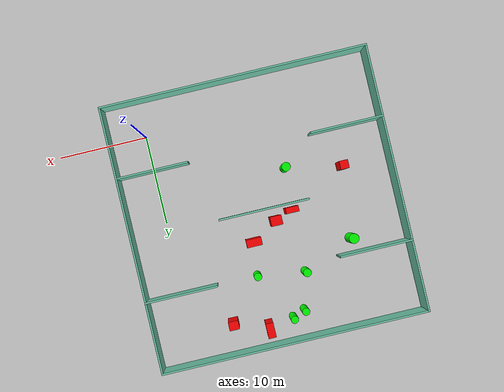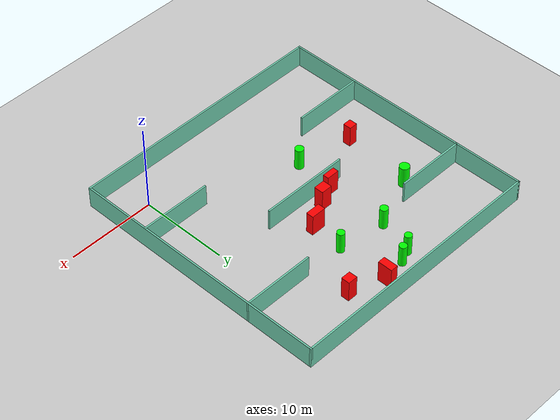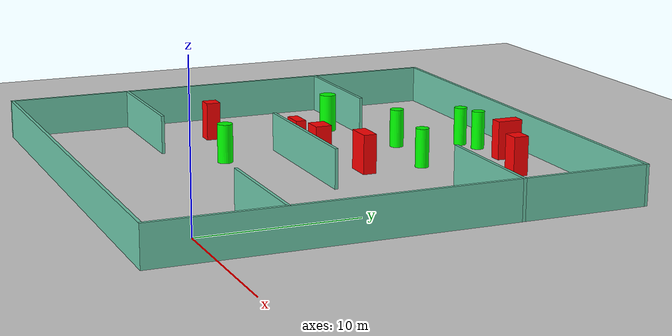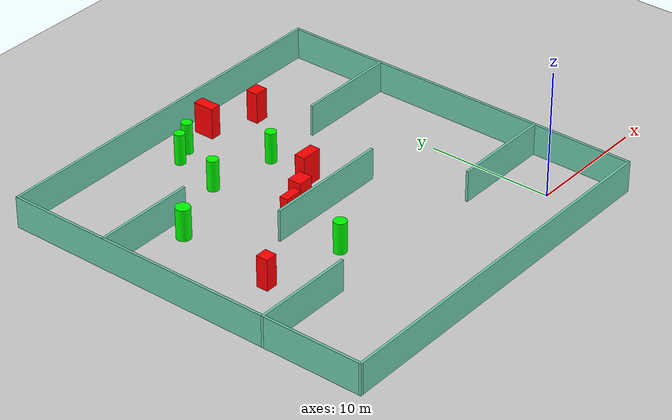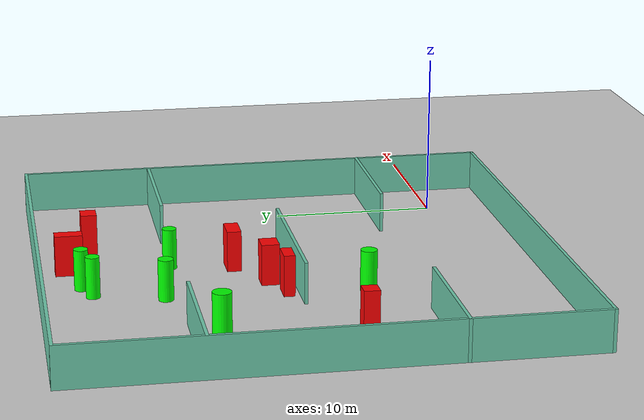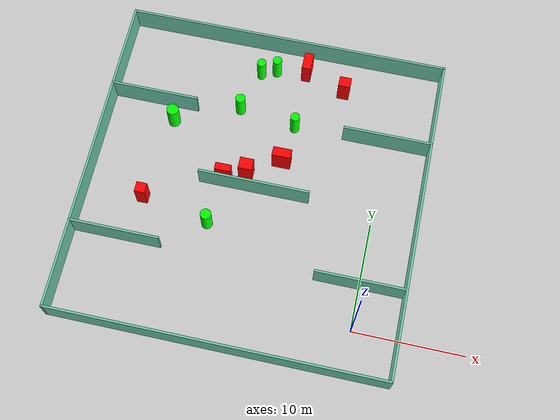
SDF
<sdf version="1.7">
 <world name="default">
  <light name="sun" type="directional">
   <pose>0 0 10 0 -0 0</pose>
   <diffuse>0.8 0.8 0.8 1</diffuse>
   <specular>0.2 0.2 0.2 1</specular>
   <attenuation>
    <range>1000</range>
    <constant>0.9</constant>
    <linear>0.01</linear>
    <quadratic>0.001</quadratic>
   </attenuation>
   <direction>-0.5 0.1 -0.9</direction>
   <spot><inner_angle>0</inner_angle><outer_angle>0</outer_angle><falloff>0</falloff></spot>
  </light>
  <model name="ground_plane">
   <static>1</static>
   <link name="link">
    <collision name="collision">
     <geometry><plane><normal>0 0 1</normal><size>100 100</size></plane></geometry>
     <surface>
      <contact><collide_bitmask>65535</collide_bitmask></contact>
      <friction><ode><mu>100</mu><mu2>50</mu2></ode></friction>
     </surface>
    </collision>
    <visual name="visual">
     <cast_shadows>0</cast_shadows>
     <geometry><plane><normal>0 0 1</normal><size>100 100</size></plane></geometry>
     <material>
      <script><uri>file://media/materials/scripts/gazebo.material</uri><name>Gazebo/Grey</name></script>
     </material>
    </visual>
   </link>
  </model>
  <gravity>0 0 -9.8</gravity>
  <magnetic_field>6e-06 2.3e-05 -4.2e-05</magnetic_field>
  <atmosphere type="adiabatic"/>
  <physics type="ode">
   <max_step_size>0.001</max_step_size>
   <real_time_factor>1</real_time_factor>
   <real_time_update_rate>1000</real_time_update_rate>
  </physics>
  <scene><ambient>0.4 0.4 0.4 1</ambient><background>0.7 0.7 0.7 1</background><shadows>1</shadows></scene>
  <spherical_coordinates>
   <surface_model>EARTH_WGS84</surface_model>
   <latitude_deg>0</latitude_deg>
   <longitude_deg>0</longitude_deg>
   <elevation>0</elevation>
   <heading_deg>0</heading_deg>
  </spherical_coordinates>
  <model name="my_base_walls">
   <link name="Wall_10">
    <collision name="Wall_10_Collision">
     <geometry><box><size>8.2 0.2 2.5</size></box></geometry>
     <pose>0 0 1.25 0 -0 0</pose>
    </collision>
    <visual name="Wall_10_Visual">
     <pose>0 0 1.25 0 -0 0</pose>
     <geometry><box><size>8.2 0.2 2.5</size></box></geometry>
     <material>
      <script><uri>file://media/materials/scripts/gazebo.material</uri><name>Gazebo/Grey</name></script>
      <ambient>0.435294 0.796078 0.67451 1</ambient>
     </material>
     <meta><layer>0</layer></meta>
    </visual>
    <pose>-11 -7 0 0 -0 0</pose>
   </link>
   <link name="Wall_12">
    <collision name="Wall_12_Collision">
     <geometry><box><size>8.2 0.2 2.5</size></box></geometry>
     <pose>0 0 1.25 0 -0 0</pose>
    </collision>
    <visual name="Wall_12_Visual">
     <pose>0 0 1.25 0 -0 0</pose>
     <geometry><box><size>8.2 0.2 2.5</size></box></geometry>
     <material>
      <script><uri>file://media/materials/scripts/gazebo.material</uri><name>Gazebo/Grey</name></script>
      <ambient>0.435294 0.796078 0.67451 1</ambient>
     </material>
     <meta><layer>0</layer></meta>
    </visual>
    <pose>-11 7 0 0 -0 0</pose>
   </link>
   <link name="Wall_14">
    <collision name="Wall_14_Collision">
     <geometry><box><size>8.2 0.2 2.5</size></box></geometry>
     <pose>0 0 1.25 0 -0 0</pose>
    </collision>
    <visual name="Wall_14_Visual">
     <pose>0 0 1.25 0 -0 0</pose>
     <geometry><box><size>8.2 0.2 2.5</size></box></geometry>
     <material>
      <script><uri>file://media/materials/scripts/gazebo.material</uri><name>Gazebo/Grey</name></script>
      <ambient>0.435294 0.796078 0.67451 1</ambient>
     </material>
     <meta><layer>0</layer></meta>
    </visual>
    <pose>11 7 0 0 -0 3.14159</pose>
   </link>
   <link name="Wall_16">
    <collision name="Wall_16_Collision">
     <geometry><box><size>10.2 0.2 2.5</size></box></geometry>
     <pose>0 0 1.25 0 -0 0</pose>
    </collision>
    <visual name="Wall_16_Visual">
     <pose>0 0 1.25 0 -0 0</pose>
     <geometry><box><size>10.2 0.2 2.5</size></box></geometry>
     <material>
      <script><uri>file://media/materials/scripts/gazebo.material</uri><name>Gazebo/Grey</name></script>
      <ambient>0.435294 0.796078 0.67451 1</ambient>
     </material>
     <meta><layer>0</layer></meta>
    </visual>
    <pose>0 0 0 0 -0 3.14159</pose>
   </link>
   <link name="Wall_2">
    <collision name="Wall_2_Collision">
     <geometry><box><size>30.2 0.2 2.5</size></box></geometry>
     <pose>0 0 1.25 0 -0 0</pose>
    </collision>
    <visual name="Wall_2_Visual">
     <pose>0 0 1.25 0 -0 0</pose>
     <geometry><box><size>30.2 0.2 2.5</size></box></geometry>
     <material>
      <script><uri>file://media/materials/scripts/gazebo.material</uri><name>Gazebo/Grey</name></script>
      <ambient>0.435294 0.796078 0.67451 1</ambient>
     </material>
     <meta><layer>0</layer></meta>
    </visual>
    <pose>0 -15 0 0 -0 3.14159</pose>
   </link>
   <link name="Wall_3">
    <collision name="Wall_3_Collision">
     <geometry><box><size>30.2 0.2 2.5</size></box></geometry>
     <pose>0 0 1.25 0 -0 0</pose>
    </collision>
    <visual name="Wall_3_Visual">
     <pose>0 0 1.25 0 -0 0</pose>
     <geometry><box><size>30.2 0.2 2.5</size></box></geometry>
     <material>
      <script><uri>file://media/materials/scripts/gazebo.material</uri><name>Gazebo/Grey</name></script>
      <ambient>0.435294 0.796078 0.67451 1</ambient>
     </material>
     <meta><layer>0</layer></meta>
    </visual>
    <pose>-15 0 0 0 -0 1.5708</pose>
   </link>
   <link name="Wall_4">
    <collision name="Wall_4_Collision">
     <geometry><box><size>30.2 0.2 2.5</size></box></geometry>
     <pose>0 0 1.25 0 -0 0</pose>
    </collision>
    <visual name="Wall_4_Visual">
     <pose>0 0 1.25 0 -0 0</pose>
     <geometry><box><size>30.2 0.2 2.5</size></box></geometry>
     <material>
      <script><uri>file://media/materials/scripts/gazebo.material</uri><name>Gazebo/Grey</name></script>
      <ambient>0.435294 0.796078 0.67451 1</ambient>
     </material>
     <meta><layer>0</layer></meta>
    </visual>
    <pose>0 15 0 0 -0 0</pose>
   </link>
   <link name="Wall_6">
    <collision name="Wall_6_Collision">
     <geometry><box><size>30.2 0.2 2.5</size></box></geometry>
     <pose>0 0 1.25 0 -0 0</pose>
    </collision>
    <visual name="Wall_6_Visual">
     <pose>0 0 1.25 0 -0 0</pose>
     <geometry><box><size>30.2 0.2 2.5</size></box></geometry>
     <material>
      <script><uri>file://media/materials/scripts/gazebo.material</uri><name>Gazebo/Grey</name></script>
      <ambient>0.435294 0.796078 0.67451 1</ambient>
     </material>
     <meta><layer>0</layer></meta>
    </visual>
    <pose>15 0 0 0 -0 1.5708</pose>
   </link>
   <link name="Wall_8">
    <collision name="Wall_8_Collision">
     <geometry><box><size>8.2 0.2 2.5</size></box></geometry>
     <pose>0 0 1.25 0 -0 0</pose>
    </collision>
    <visual name="Wall_8_Visual">
     <pose>0 0 1.25 0 -0 0</pose>
     <geometry><box><size>8.2 0.2 2.5</size></box></geometry>
     <material>
      <script><uri>file://media/materials/scripts/gazebo.material</uri><name>Gazebo/Grey</name></script>
      <ambient>0.435294 0.796078 0.67451 1</ambient>
     </material>
     <meta><layer>0</layer></meta>
    </visual>
    <pose>11 -7 0 0 -0 3.14159</pose>
   </link>
   <static>1</static>
   <pose>-11 11 0 0 -0 0</pose>
  </model>
  <model name="cylinder1">
   <static>1</static>
   <link name="link">
    <inertial>
     <mass>1</mass>
     <inertia><ixx>0.5</ixx><ixy>0</ixy><ixz>0</ixz><iyy>0.5</iyy><iyz>0</iyz><izz>1</izz></inertia>
    </inertial>
    <collision name="collision">
     <geometry><cylinder><radius>0.5595891323465612</radius><length>2.5</length></cylinder></geometry>
    </collision>
    <visual name="visual">
     <geometry><cylinder><radius>0.5595891323465612</radius><length>2.5</length></cylinder></geometry>
     <material>
      <ambient>0 1 0 1</ambient>
      <diffuse>0 1 0 1</diffuse>
      <specular>0.1 0.1 0.1 1</specular>
      <emissive>0 0 0 0</emissive>
     </material>
    </visual>
   </link>
   <pose>-19.843727237448633 16.376484649517717 1.25 0 0 0</pose>
  </model>
  <model name="cylinder2">
   <static>1</static>
   <link name="link">
    <inertial>
     <mass>1</mass>
     <inertia><ixx>0.5</ixx><ixy>0</ixy><ixz>0</ixz><iyy>0.5</iyy><iyz>0</iyz><izz>1</izz></inertia>
    </inertial>
    <collision name="collision">
     <geometry><cylinder><radius>0.4309791030595116</radius><length>2.5</length></cylinder></geometry>
    </collision>
    <visual name="visual">
     <geometry><cylinder><radius>0.4309791030595116</radius><length>2.5</length></cylinder></geometry>
     <material>
      <ambient>0 1 0 1</ambient>
      <diffuse>0 1 0 1</diffuse>
      <specular>0.1 0.1 0.1 1</specular>
      <emissive>0 0 0 0</emissive>
     </material>
    </visual>
   </link>
   <pose>-8.646039555624187 18.02951400548819 1.25 0 0 0</pose>
  </model>
  <model name="cylinder3">
   <static>1</static>
   <link name="link">
    <inertial>
     <mass>1</mass>
     <inertia><ixx>0.5</ixx><ixy>0</ixy><ixz>0</ixz><iyy>0.5</iyy><iyz>0</iyz><izz>1</izz></inertia>
    </inertial>
    <collision name="collision">
     <geometry><cylinder><radius>0.45417369976958905</radius><length>2.5</length></cylinder></geometry>
    </collision>
    <visual name="visual">
     <geometry><cylinder><radius>0.45417369976958905</radius><length>2.5</length></cylinder></geometry>
     <material>
      <ambient>0 1 0 1</ambient>
      <diffuse>0 1 0 1</diffuse>
      <specular>0.1 0.1 0.1 1</specular>
      <emissive>0 0 0 0</emissive>
     </material>
    </visual>
   </link>
   <pose>-14.00569529678399 18.833149169243097 1.25 0 0 0</pose>
  </model>
  <model name="cylinder4">
   <static>1</static>
   <link name="link">
    <inertial>
     <mass>1</mass>
     <inertia><ixx>0.5</ixx><ixy>0</ixy><ixz>0</ixz><iyy>0.5</iyy><iyz>0</iyz><izz>1</izz></inertia>
    </inertial>
    <collision name="collision">
     <geometry><cylinder><radius>0.4242971560941593</radius><length>2.5</length></cylinder></geometry>
    </collision>
    <visual name="visual">
     <geometry><cylinder><radius>0.4242971560941593</radius><length>2.5</length></cylinder></geometry>
     <material>
      <ambient>0 1 0 1</ambient>
      <diffuse>0 1 0 1</diffuse>
      <specular>0.1 0.1 0.1 1</specular>
      <emissive>0 0 0 0</emissive>
     </material>
    </visual>
   </link>
   <pose>-11.487356789117964 23.51471348263624 1.25 0 0 0</pose>
  </model>
  <model name="cylinder5">
   <static>1</static>
   <link name="link">
    <inertial>
     <mass>1</mass>
     <inertia><ixx>0.5</ixx><ixy>0</ixy><ixz>0</ixz><iyy>0.5</iyy><iyz>0</iyz><izz>1</izz></inertia>
    </inertial>
    <collision name="collision">
     <geometry><cylinder><radius>0.4954223073890967</radius><length>2.5</length></cylinder></geometry>
    </collision>
    <visual name="visual">
     <geometry><cylinder><radius>0.4954223073890967</radius><length>2.5</length></cylinder></geometry>
     <material>
      <ambient>0 1 0 1</ambient>
      <diffuse>0 1 0 1</diffuse>
      <specular>0.1 0.1 0.1 1</specular>
      <emissive>0 0 0 0</emissive>
     </material>
    </visual>
   </link>
   <pose>-14.414838295770677 7.007720172923971 1.25 0 0 0</pose>
  </model>
  <model name="cylinder6">
   <static>1</static>
   <link name="link">
    <inertial>
     <mass>1</mass>
     <inertia><ixx>0.5</ixx><ixy>0</ixy><ixz>0</ixz><iyy>0.5</iyy><iyz>0</iyz><izz>1</izz></inertia>
    </inertial>
    <collision name="collision">
     <geometry><cylinder><radius>0.41531135884172926</radius><length>2.5</length></cylinder></geometry>
    </collision>
    <visual name="visual">
     <geometry><cylinder><radius>0.41531135884172926</radius><length>2.5</length></cylinder></geometry>
     <material>
      <ambient>0 1 0 1</ambient>
      <diffuse>0 1 0 1</diffuse>
      <specular>0.1 0.1 0.1 1</specular>
      <emissive>0 0 0 0</emissive>
     </material>
    </visual>
   </link>
   <pose>-12.888283474597383 22.949866255851077 1.25 0 0 0</pose>
  </model>
  <model name="box1">
   <static>1</static>
   <link name="link">
    <inertial>
     <mass>1</mass>
     <inertia><ixx>0.083</ixx><ixy>0</ixy><ixz>0</ixz><iyy>0.083</iyy><iyz>0</iyz><izz>0.083</izz></inertia>
    </inertial>
    <collision name="collision">
     <geometry><box><size>0.8516865609525195 1.6623397442282761 2.5</size></box></geometry>
    </collision>
    <visual name="visual">
     <geometry><box><size>0.8516865609525195 1.6623397442282761 2.5</size></box></geometry>
     <material>
      <ambient>1 0 0 1</ambient>
      <diffuse>1 0 0 1</diffuse>
      <specular>0.1 0.1 0.1 1</specular>
      <emissive>0 0 0 0</emissive>
     </material>
    </visual>
    <sensor name="my_contact" type="contact">
     <contact><collision>box_collision</collision><topic>__default_topic__</topic></contact>
    </sensor>
   </link>
   <pose>-8.661346269277029 24.070165583076303 1.25 0 0 0</pose>
  </model>
  <model name="box2">
   <static>1</static>
   <link name="link">
    <inertial>
     <mass>1</mass>
     <inertia><ixx>0.083</ixx><ixy>0</ixy><ixz>0</ixz><iyy>0.083</iyy><iyz>0</iyz><izz>0.083</izz></inertia>
    </inertial>
    <collision name="collision">
     <geometry><box><size>1.1058195140797724 0.9702147256006471 2.5</size></box></geometry>
    </collision>
    <visual name="visual">
     <geometry><box><size>1.1058195140797724 0.9702147256006471 2.5</size></box></geometry>
     <material>
      <ambient>1 0 0 1</ambient>
      <diffuse>1 0 0 1</diffuse>
      <specular>0.1 0.1 0.1 1</specular>
      <emissive>0 0 0 0</emissive>
     </material>
    </visual>
    <sensor name="my_contact" type="contact">
     <contact><collision>box_collision</collision><topic>__default_topic__</topic></contact>
    </sensor>
   </link>
   <pose>-4.839552382849533 22.60624751930502 1.25 0 0 0</pose>
  </model>
  <model name="box3">
   <static>1</static>
   <link name="link">
    <inertial>
     <mass>1</mass>
     <inertia><ixx>0.083</ixx><ixy>0</ixy><ixz>0</ixz><iyy>0.083</iyy><iyz>0</iyz><izz>0.083</izz></inertia>
    </inertial>
    <collision name="collision">
     <geometry><box><size>1.2734177309499248 1.0702624515628032 2.5</size></box></geometry>
    </collision>
    <visual name="visual">
     <geometry><box><size>1.2734177309499248 1.0702624515628032 2.5</size></box></geometry>
     <material>
      <ambient>1 0 0 1</ambient>
      <diffuse>1 0 0 1</diffuse>
      <specular>0.1 0.1 0.1 1</specular>
      <emissive>0 0 0 0</emissive>
     </material>
    </visual>
    <sensor name="my_contact" type="contact">
     <contact><collision>box_collision</collision><topic>__default_topic__</topic></contact>
    </sensor>
   </link>
   <pose>-12.02619737128804 12.509942760470532 1.25 0 0 0</pose>
  </model>
  <model name="box4">
   <static>1</static>
   <link name="link">
    <inertial>
     <mass>1</mass>
     <inertia><ixx>0.083</ixx><ixy>0</ixy><ixz>0</ixz><iyy>0.083</iyy><iyz>0</iyz><izz>0.083</izz></inertia>
    </inertial>
    <collision name="collision">
     <geometry><box><size>0.9577561967907102 0.9346243671169382 2.5</size></box></geometry>
    </collision>
    <visual name="visual">
     <geometry><box><size>0.9577561967907102 0.9346243671169382 2.5</size></box></geometry>
     <material>
      <ambient>1 0 0 1</ambient>
      <diffuse>1 0 0 1</diffuse>
      <specular>0.1 0.1 0.1 1</specular>
      <emissive>0 0 0 0</emissive>
     </material>
    </visual>
    <sensor name="my_contact" type="contact">
     <contact><collision>box_collision</collision><topic>__default_topic__</topic></contact>
    </sensor>
   </link>
   <pose>-20.6696435234425 8.245083465988923 1.25 0 0 0</pose>
  </model>
  <model name="box5">
   <static>1</static>
   <link name="link">
    <inertial>
     <mass>1</mass>
     <inertia><ixx>0.083</ixx><ixy>0</ixy><ixz>0</ixz><iyy>0.083</iyy><iyz>0</iyz><izz>0.083</izz></inertia>
    </inertial>
    <collision name="collision">
     <geometry><box><size>1.7050626968933777 0.8587121003715787 2.5</size></box></geometry>
    </collision>
    <visual name="visual">
     <geometry><box><size>1.7050626968933777 0.8587121003715787 2.5</size></box></geometry>
     <material>
      <ambient>1 0 0 1</ambient>
      <diffuse>1 0 0 1</diffuse>
      <specular>0.1 0.1 0.1 1</specular>
      <emissive>0 0 0 0</emissive>
     </material>
    </visual>
    <sensor name="my_contact" type="contact">
     <contact><collision>box_collision</collision><topic>__default_topic__</topic></contact>
    </sensor>
   </link>
   <pose>-9.104188466792461 14.273001579473572 1.25 0 0 0</pose>
  </model>
  <model name="box6">
   <static>1</static>
   <link name="link">
    <inertial>
     <mass>1</mass>
     <inertia><ixx>0.083</ixx><ixy>0</ixy><ixz>0</ixz><iyy>0.083</iyy><iyz>0</iyz><izz>0.083</izz></inertia>
    </inertial>
    <collision name="collision">
     <geometry><box><size>1.4521090556598275 0.6635653569757212 2.5</size></box></geometry>
    </collision>
    <visual name="visual">
     <geometry><box><size>1.4521090556598275 0.6635653569757212 2.5</size></box></geometry>
     <material>
      <ambient>1 0 0 1</ambient>
      <diffuse>1 0 0 1</diffuse>
      <specular>0.1 0.1 0.1 1</specular>
      <emissive>0 0 0 0</emissive>
     </material>
    </visual>
    <sensor name="my_contact" type="contact">
     <contact><collision>box_collision</collision><topic>__default_topic__</topic></contact>
    </sensor>
   </link>
   <pose>-13.99264736929619 11.736216473112538 1.25 0 0 0</pose>
  </model>
 </world>
</sdf>
